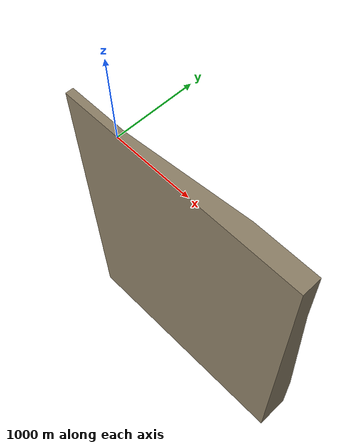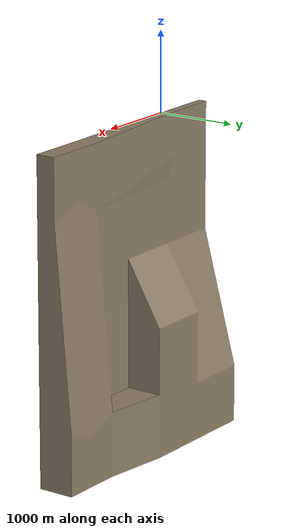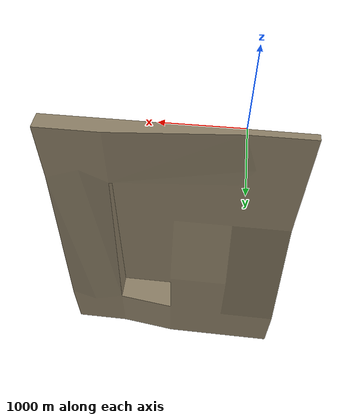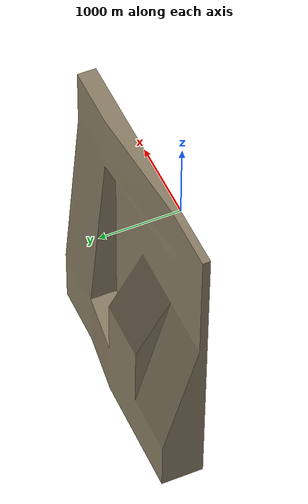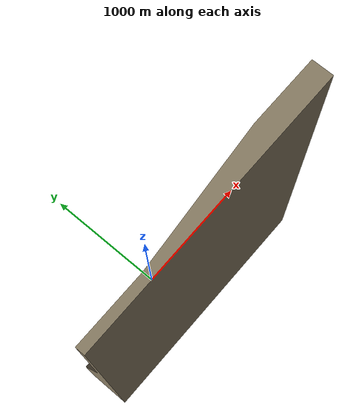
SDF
<?xml version="1.0"?>
<sdf version="1.9">
  <world name="arena_terrain_v04">
    <plugin filename="gz-sim-physics-system" name="gz::sim::systems::Physics"/>
    <plugin filename="gz-sim-user-commands-system" name="gz::sim::systems::UserCommands"/>
    <plugin filename="gz-sim-scene-broadcaster-system" name="gz::sim::systems::SceneBroadcaster"/>
    <plugin filename="gz-sim-sensors-system" name="gz::sim::systems::Sensors">
      <render_engine>ogre2</render_engine>
    </plugin>
    <plugin filename="gz-sim-imu-system" name="gz::sim::systems::Imu"/>
    <physics name="rover_physics" type="ignored">
      <max_step_size>0.002</max_step_size>
      <real_time_factor>1.0</real_time_factor>
      <real_time_update_rate>500</real_time_update_rate>
    </physics>
    <gravity>0 0 -9.80665</gravity>
    <light name="sun" type="directional">
      <cast_shadows>true</cast_shadows>
      <pose>0 0 6 0 0 0</pose>
      <diffuse>0.9 0.9 0.85 1</diffuse>
      <specular>0.2 0.2 0.2 1</specular>
      <direction>-0.5 0.2 -1</direction>
    </light>
    <!-- The terrain mesh is the floor, so no overlapping ground plane is added. -->
    <include>
      <uri>model://arena_terrain_v04</uri>
    </include>
  </world>
</sdf>

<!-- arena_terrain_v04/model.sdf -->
<sdf version="1.9">
  <model name="arena_terrain_v04">
    <static>true</static>
    <!-- Mesh is already in metres, Z-up and centred at the origin, so no
         scale or rotation is required (unlike the STEP-derived slope). -->
    <pose>0 0 0 0 0 0</pose>
    <link name="terrain">
      <collision name="collision">
        <geometry>
          <mesh>
            <uri>model://arena_terrain_v04/meshes/arena_collision.stl</uri>
            <scale>1 1 1</scale>
          </mesh>
        </geometry>
        <surface>
          <friction>
            <ode><mu>0.9</mu><mu2>0.7</mu2></ode>
          </friction>
          <contact><ode><kp>1000000</kp><kd>100</kd></ode></contact>
        </surface>
      </collision>
      <visual name="visual">
        <geometry>
          <mesh>
            <uri>model://arena_terrain_v04/meshes/arena_visual.stl</uri>
            <scale>1 1 1</scale>
          </mesh>
        </geometry>
        <material>
          <diffuse>0.55 0.50 0.40 1</diffuse>
          <specular>0.1 0.1 0.1 1</specular>
        </material>
      </visual>
    </link>
  </model>
</sdf>
